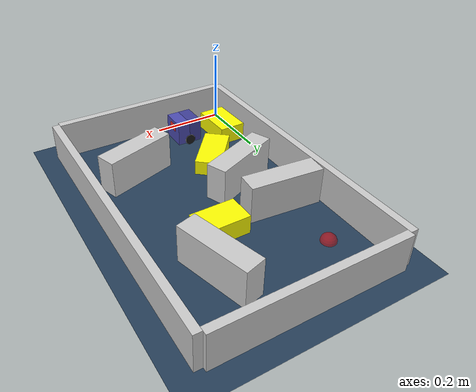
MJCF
<?xml version='1.0' encoding='utf-8'?>
<mujoco model="real_buildable">
  <compiler angle="degree" />
  <option timestep="0.002" integrator="implicitfast" iterations="100" cone="elliptic" />
  <default>
    <geom density="1" />
  </default>
  <asset>
    <texture builtin="gradient" height="3072" rgb1="0.3 0.5 0.7" rgb2="0 0 0" type="skybox" width="512" />
    <texture builtin="checker" height="300" mark="edge" markrgb="0.8 0.8 0.8" name="groundplane" rgb1="0.2 0.3 0.4" rgb2="0.1 0.2 0.3" type="2d" width="300" />
    <material name="groundplane" reflectance="0.2" texrepeat="5 5" texture="groundplane" texuniform="true" />
  </asset>
  <worldbody>
    <light dir="0 0 -1" directional="true" pos="0 0 1.5" />
    <geom name="floor" type="plane" condim="4" friction="0.5 0.005 0.001" material="groundplane" size="0 0 0.05" />
    <body name="walls">
      <geom name="wall_boundary_left" type="box" condim="4" friction="1.0 0.005 0.0001" rgba="0.8 0.8 0.8 1" pos="-0.010000 0.387500 0.050000" euler="0 0 0.000000" size="0.010000 0.397500 0.050000" />
      <geom name="wall_boundary_right" type="box" condim="4" friction="1.0 0.005 0.0001" rgba="0.8 0.8 0.8 1" pos="0.500000 0.387500 0.050000" euler="0 0 0.000000" size="0.010000 0.397500 0.050000" />
      <geom name="wall_boundary_bottom" type="box" condim="4" friction="1.0 0.005 0.0001" rgba="0.8 0.8 0.8 1" pos="0.245000 -0.010000 0.050000" euler="0 0 0.000000" size="0.245000 0.010000 0.050000" />
      <geom name="wall_boundary_top" type="box" condim="4" friction="1.0 0.005 0.0001" rgba="0.8 0.8 0.8 1" pos="0.245000 0.785000 0.050000" euler="0 0 0.000000" size="0.245000 0.010000 0.050000" />
      <geom name="wall_inner_1" type="box" condim="4" friction="1.0 0.005 0.0001" rgba="0.8 0.8 0.8 1" pos="0.137222 0.348401 0.050000" euler="0 0 22.025412" size="0.097500 0.027500 0.050000" />
      <geom name="wall_inner_2" type="box" condim="4" friction="1.0 0.005 0.0001" rgba="0.8 0.8 0.8 1" pos="0.354137 0.188165 0.050000" euler="0 0 18.079591" size="0.097500 0.027500 0.050000" />
      <geom name="wall_inner_3" type="box" condim="4" friction="1.0 0.005 0.0001" rgba="0.8 0.8 0.8 1" pos="0.100000 0.481000 0.050000" euler="0 0 174.900000" size="0.097500 0.027500 0.050000" />
      <geom name="wall_inner_4" type="box" condim="4" friction="1.0 0.005 0.0001" rgba="0.8 0.8 0.8 1" pos="0.354000 0.611000 0.050000" euler="0 0 105.800000" size="0.097500 0.027500 0.050000" />
    </body>
    <body name="car" pos="0.16 0.09 0.01">
      <freejoint name="car_freejoint" />
      <inertial pos="0 0 0.0375" mass="0.35" diaginertia="0.000266 0.000266 0.000286" />
      <geom name="front_chassis_collision" type="box" pos="0.0175 0 0.0375" size="0.0175 0.035 0.0325" rgba="0.3 0.3 0.7 1" />
      <geom name="rear_chassis_collision" type="box" pos="-0.0175 0 0.0375" size="0.0175 0.035 0.0325" rgba="0.25 0.25 0.6 1" />
      <geom name="front_marker" type="box" pos="0.034 0 0.0505" size="0.002 0.015 0.01" rgba="1 0.2 0.2 1" contype="0" conaffinity="0" />
      <body name="rear_support_body" pos="-0.03 0 0.0025">
        <joint name="rear_caster_joint" type="ball" damping="0.0001" />
        <inertial pos="0 0 0" mass="0.025" diaginertia="0.000001 0.000001 0.000001" />
        <geom name="rear_support" type="sphere" pos="0 0 0" size="0.0025" friction="0 0 0" rgba="0.7 0.1 0.1 1" />
      </body>
      <body name="front_support_body" pos="0.03 0 0.0025">
        <joint name="front_caster_joint" type="ball" damping="0.0001" />
        <inertial pos="0 0 0" mass="0.025" diaginertia="0.000001 0.000001 0.000001" />
        <geom name="front_support" type="sphere" pos="0 0 0" size="0.0025" friction="0 0 0" rgba="0.1 0.7 0.1 1" />
      </body>
      <body name="left_wheel" pos="0 0.0375 0.015">
        <inertial pos="0 0 0" mass="0.05" diaginertia="0.000003 0.000006 0.000003" />
        <joint name="left_wheel_joint" type="hinge" axis="0 1 0" damping="0.01" armature="0.0001" />
        <geom name="left_wheel_collision" type="cylinder" size="0.015 0.0005" euler="90 0 0" rgba="0.1 0.1 0.1 1" />
      </body>
      <body name="right_wheel" pos="0 -0.0375 0.015">
        <inertial pos="0 0 0" mass="0.05" diaginertia="0.000003 0.000006 0.000003" />
        <joint name="right_wheel_joint" type="hinge" axis="0 1 0" damping="0.01" armature="0.0001" />
        <geom name="right_wheel_collision" type="cylinder" size="0.015 0.0005" euler="90 0 0" rgba="0.1 0.1 0.1 1" />
      </body>
    </body>
    <body name="obstacle_0_movable">
      <geom name="obstacle_0_movable" condim="4" pos="0.139701 0.220000 0.020000" euler="0 0 139.754375" friction="1 0.005 0.0001" rgba="1 1 0 1" size="0.035000 0.075000 0.020000" type="box" mass="0.1" />
      <joint type="free" />
    </body>
    <body name="obstacle_1_movable">
      <geom name="obstacle_1_movable" condim="4" pos="0.279000 0.490000 0.025000" euler="0 0 -89.400000" friction="1 0.005 0.0001" rgba="1 1 0 1" size="0.037500 0.060000 0.025000" type="box" mass="0.1" />
      <joint type="free" />
    </body>
    <body name="obstacle_2_movable">
      <geom name="obstacle_2_movable" condim="4" pos="0.040203 0.102450 0.025000" euler="0 0 1.217967" friction="1 0.005 0.0001" rgba="1 1 0 1" size="0.037500 0.060000 0.025000" type="box" mass="0.1" />
      <joint type="free" />
    </body>
    <site name="goal" type="sphere" pos="0.080000 0.640000 0.0" size="0.02" rgba="1 0 0 0.5" />
  </worldbody>
  <actuator>
    <velocity name="left_wheel_drive" joint="left_wheel_joint" ctrlrange="-25 25" kv="0.75" forcerange="-0.5 0.5" />
    <velocity name="right_wheel_drive" joint="right_wheel_joint" ctrlrange="-25 25" kv="0.75" forcerange="-0.5 0.5" />
  </actuator>
</mujoco>
